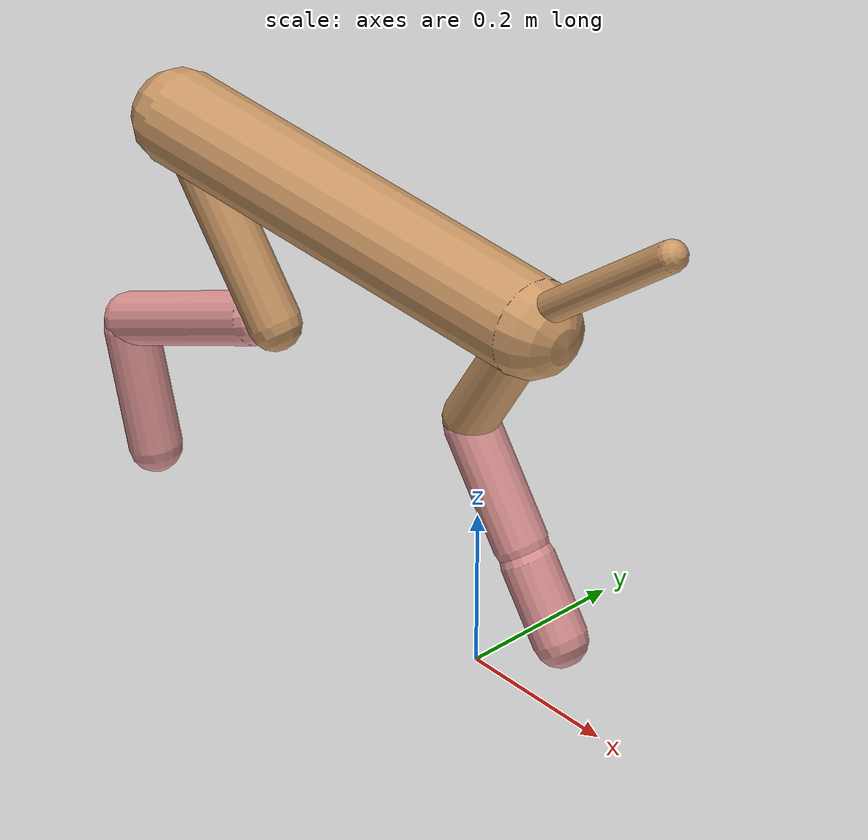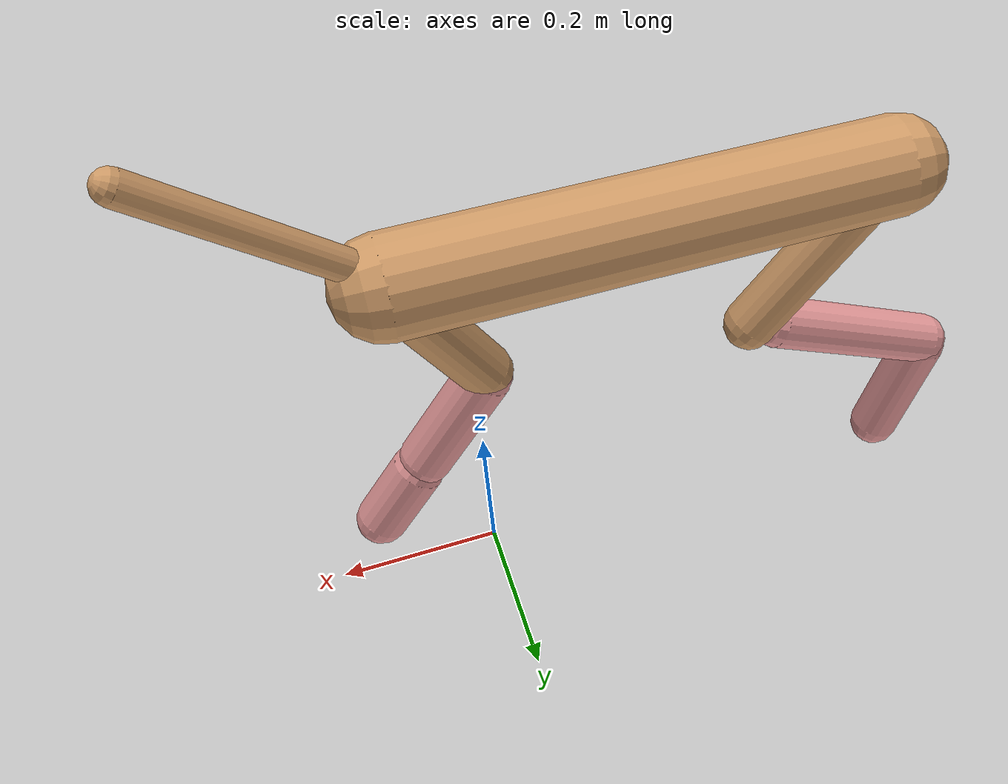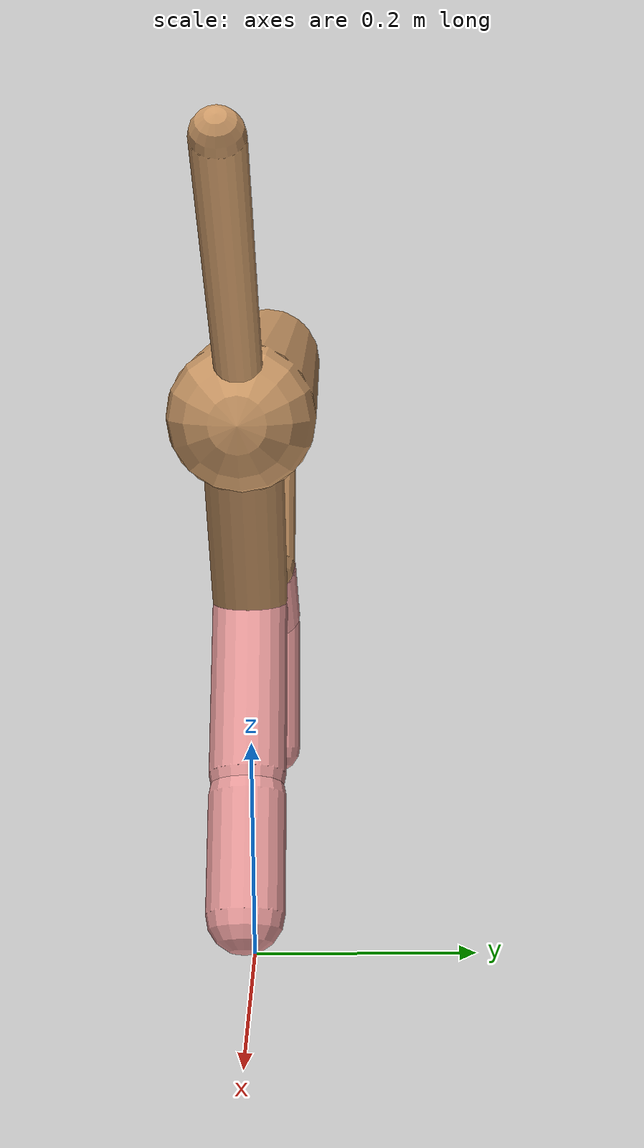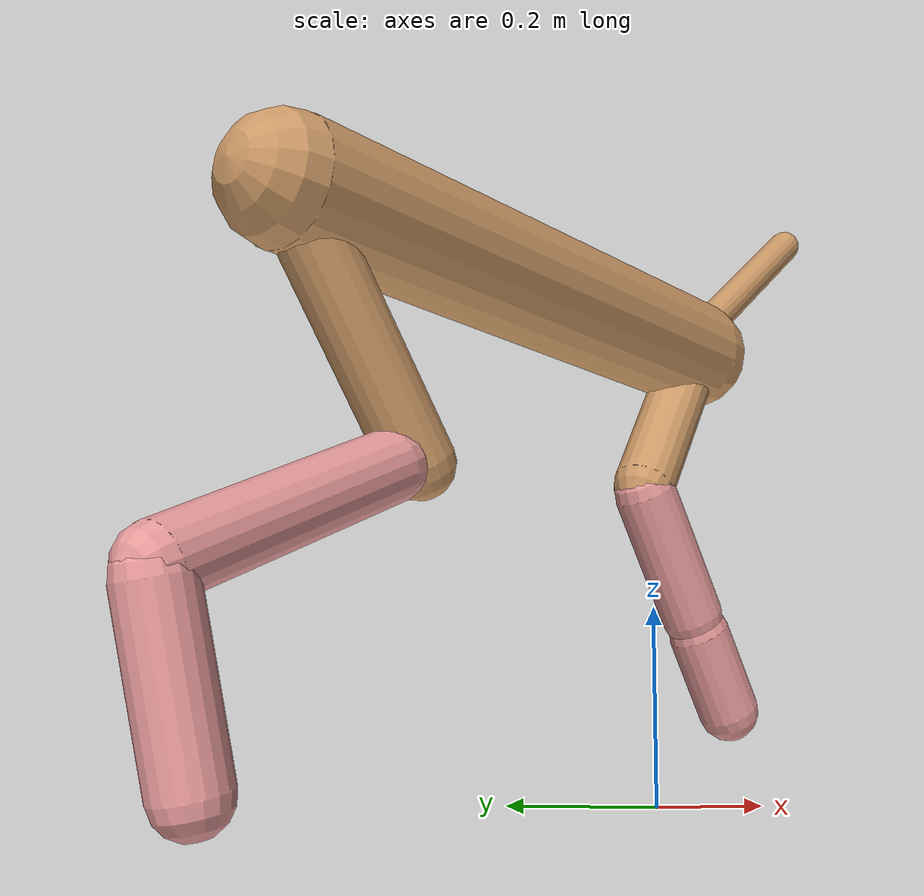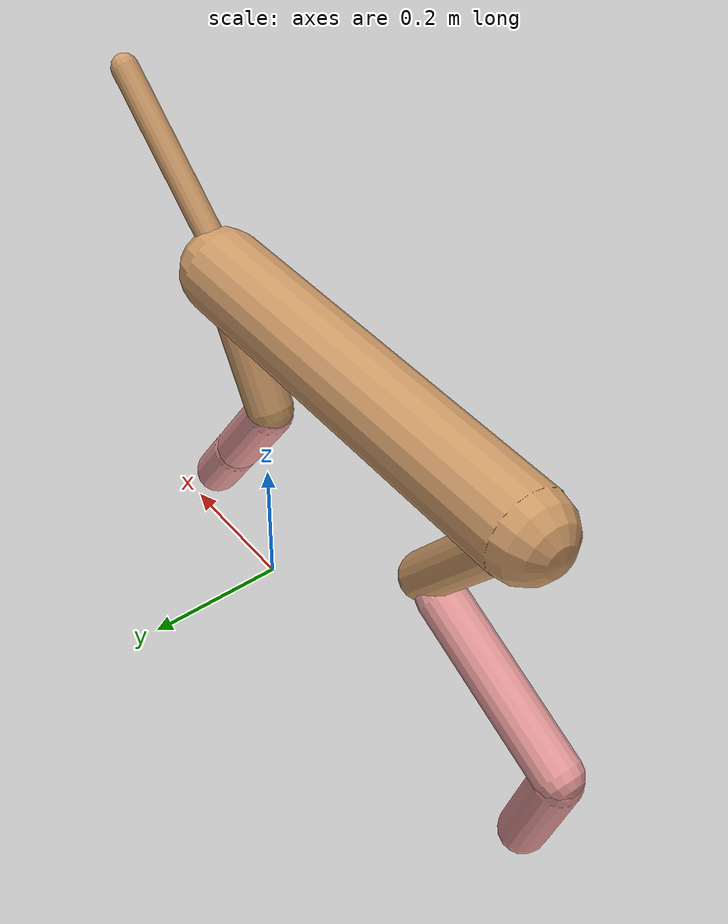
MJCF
<mujoco model="cheetah">
  <compiler angle="radian" coordinate="local" inertiafromgeom="true" settotalmass="14" />
  <default>
    <joint armature=".1" damping=".01" limited="true" solimplimit="0 .8 .03" solreflimit=".02 1" stiffness="8" />
    <geom conaffinity="0" condim="3" contype="1" friction="0.8 .1 .1" rgba="0.8 0.6 .4 1" solimp="0.0 0.8 0.01" solref="0.02 1" />
    <motor ctrllimited="true" ctrlrange="-1 1" />
  </default>
  <size nstack="300000" nuser_geom="1" />
  <option gravity="0 0 -9.81" timestep="0.01" />
  <worldbody>
    <body name="torso" pos="0.0 0.0 0.4934260236630833">
      <joint armature="0" axis="1 0 0" damping="0" limited="false" name="ignorex" pos="0 0 0" stiffness="0" type="slide" />
      <joint armature="0" axis="0 0 1" damping="0" limited="false" name="ignorez" pos="0 0 0" stiffness="0" type="slide" />
      <joint armature="0" axis="0 1 0" damping="0" limited="false" name="ignorey" pos="0 0 0" stiffness="0" type="hinge" />
      <geom fromto="-0.5 0.0 0.0 0.08297193065498032 0.0 0.0" name="torso" size="0.05857467420241485" type="capsule" />
      <geom axisangle="0 1 0 .87" name="head" pos="0.1829719306549803 0.0 0.1" size="0.01859703579312429 0.15" type="capsule" />

      <body name="bthigh" pos="-.5 0 0">
        <joint axis="0 1 0" damping="6" name="bthigh" pos="0 0 0" range="-.52 1.05" stiffness="240" type="hinge" />
        <geom axisangle="0 1 0 -3.8" name="bthigh" pos="0.08452304698203515 0.0 -0.10987996107664569" size="0.0322 0.11961590968741277" type="capsule" />
        <body name="bshin" pos="0.1290460939640703 0.0 -0.20975992215329137">
          <joint axis="0 1 0" damping="4.5" name="bshin" pos="0 0 0" range="-.785 .785" stiffness="180" type="hinge" />
          <geom axisangle="0 1 0 -2.03" name="bshin" pos="-0.11651287524719771 0.0 -0.058256437623598854" rgba="0.9 0.6 0.6 1" size="0.0322 0.12374059622835804" type="capsule" />
          <body name="bfoot" pos="-0.23302575049439542 0.0 -0.11651287524719771">
            <joint axis="0 1 0" damping="3" name="bfoot" pos="0 0 0" range="-.4 .785" stiffness="120" type="hinge" />
            <geom axisangle="0 1 0 -.27" name="bfoot" pos="0.025137781845923066 0.0 -0.08127882796848458" rgba="0.9 0.6 0.6 1" size="0.0322 0.07754410696977104" type="capsule" />
            <inertial mass="10" />
          </body>
        </body>
      </body>
      <body name="fthigh" pos="0.08297193065498032 0.0 0.0">
        <joint axis="0 1 0" damping="4.5" name="fthigh" pos="0 0 0" range="-1.5 0.8" stiffness="180" type="hinge" />
        <geom axisangle="0 1 0 .52" name="fthigh" pos="-0.04989554608158897 0.0 -0.0855352218541525" size="0.0322 0.0931" type="capsule" />
        <body name="fshin" pos="-0.09979109216317794 0.0 -0.171070443708305">
          <joint axis="0 1 0" damping="3" name="fshin" pos="0 0 0" range="-1.2 1.1" stiffness="120" type="hinge" />
          <geom axisangle="0 1 0 -.6" name="fshin" pos="0.046381400387749405 0.0 -0.06422040053688378" rgba="0.9 0.6 0.6 1" size="0.0322 0.07419999999999999" type="capsule" />
          <body name="ffoot" pos="0.09276280077549881 0.0 -0.12844080107376757">
            <joint axis="0 1 0" damping="1.5" name="ffoot" pos="0 0 0" range="-3.1 -0.3" stiffness="60" type="hinge" />
            <geom axisangle="0 1 0 -.6" name="ffoot" pos="0.033644090582416526 0.0 -0.05233525201709238" rgba="0.9 0.6 0.6 1" size="0.0322 0.049" type="capsule" />
            <inertial mass="10" />
          </body>
        </body>
      </body>
    </body>
  </worldbody>
  <actuator>
    <motor gear="120" joint="bthigh" name="bthigh" />
    <motor gear="90" joint="bshin" name="bshin" />
    <motor gear="60" joint="bfoot" name="bfoot" />
    <motor gear="120" joint="fthigh" name="fthigh" />
    <motor gear="60" joint="fshin" name="fshin" />
    <motor gear="30" joint="ffoot" name="ffoot" />
  </actuator>
</mujoco>
